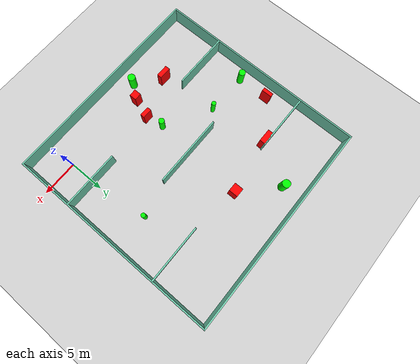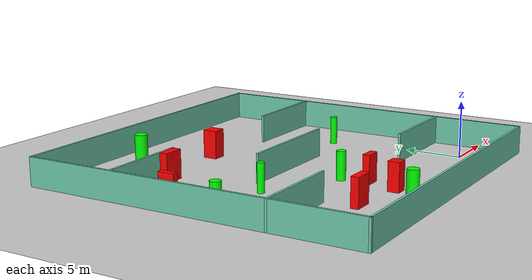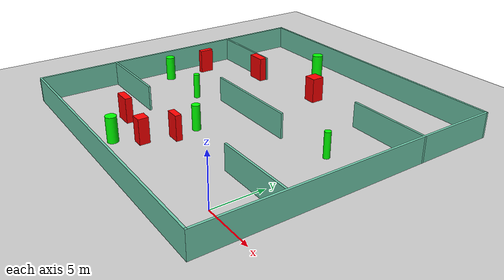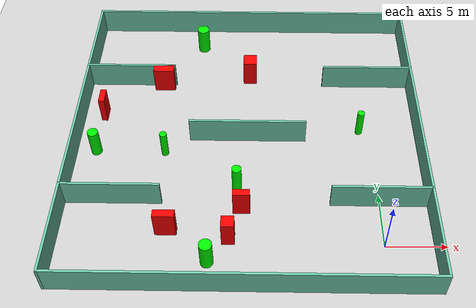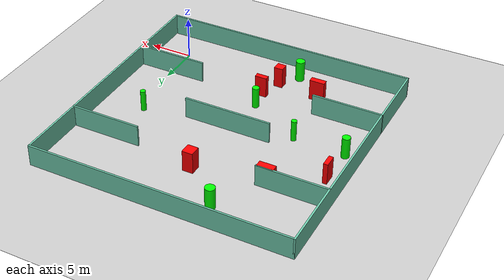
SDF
<sdf version="1.7">
 <world name="default">
  <light name="sun" type="directional">
   <pose>0 0 10 0 -0 0</pose>
   <diffuse>0.8 0.8 0.8 1</diffuse>
   <specular>0.2 0.2 0.2 1</specular>
   <attenuation>
    <range>1000</range>
    <constant>0.9</constant>
    <linear>0.01</linear>
    <quadratic>0.001</quadratic>
   </attenuation>
   <direction>-0.5 0.1 -0.9</direction>
   <spot><inner_angle>0</inner_angle><outer_angle>0</outer_angle><falloff>0</falloff></spot>
  </light>
  <model name="ground_plane">
   <static>1</static>
   <link name="link">
    <collision name="collision">
     <geometry><plane><normal>0 0 1</normal><size>100 100</size></plane></geometry>
     <surface>
      <contact><collide_bitmask>65535</collide_bitmask></contact>
      <friction><ode><mu>100</mu><mu2>50</mu2></ode></friction>
     </surface>
    </collision>
    <visual name="visual">
     <cast_shadows>0</cast_shadows>
     <geometry><plane><normal>0 0 1</normal><size>100 100</size></plane></geometry>
     <material>
      <script><uri>file://media/materials/scripts/gazebo.material</uri><name>Gazebo/Grey</name></script>
     </material>
    </visual>
   </link>
  </model>
  <gravity>0 0 -9.8</gravity>
  <magnetic_field>6e-06 2.3e-05 -4.2e-05</magnetic_field>
  <atmosphere type="adiabatic"/>
  <physics type="ode">
   <max_step_size>0.001</max_step_size>
   <real_time_factor>1</real_time_factor>
   <real_time_update_rate>1000</real_time_update_rate>
  </physics>
  <scene><ambient>0.4 0.4 0.4 1</ambient><background>0.7 0.7 0.7 1</background><shadows>1</shadows></scene>
  <spherical_coordinates>
   <surface_model>EARTH_WGS84</surface_model>
   <latitude_deg>0</latitude_deg>
   <longitude_deg>0</longitude_deg>
   <elevation>0</elevation>
   <heading_deg>0</heading_deg>
  </spherical_coordinates>
  <model name="my_base_walls">
   <link name="Wall_10">
    <collision name="Wall_10_Collision">
     <geometry><box><size>8.2 0.2 2.5</size></box></geometry>
     <pose>0 0 1.25 0 -0 0</pose>
    </collision>
    <visual name="Wall_10_Visual">
     <pose>0 0 1.25 0 -0 0</pose>
     <geometry><box><size>8.2 0.2 2.5</size></box></geometry>
     <material>
      <script><uri>file://media/materials/scripts/gazebo.material</uri><name>Gazebo/Grey</name></script>
      <ambient>0.435294 0.796078 0.67451 1</ambient>
     </material>
     <meta><layer>0</layer></meta>
    </visual>
    <pose>-11 -7 0 0 -0 0</pose>
   </link>
   <link name="Wall_12">
    <collision name="Wall_12_Collision">
     <geometry><box><size>8.2 0.2 2.5</size></box></geometry>
     <pose>0 0 1.25 0 -0 0</pose>
    </collision>
    <visual name="Wall_12_Visual">
     <pose>0 0 1.25 0 -0 0</pose>
     <geometry><box><size>8.2 0.2 2.5</size></box></geometry>
     <material>
      <script><uri>file://media/materials/scripts/gazebo.material</uri><name>Gazebo/Grey</name></script>
      <ambient>0.435294 0.796078 0.67451 1</ambient>
     </material>
     <meta><layer>0</layer></meta>
    </visual>
    <pose>-11 7 0 0 -0 0</pose>
   </link>
   <link name="Wall_14">
    <collision name="Wall_14_Collision">
     <geometry><box><size>8.2 0.2 2.5</size></box></geometry>
     <pose>0 0 1.25 0 -0 0</pose>
    </collision>
    <visual name="Wall_14_Visual">
     <pose>0 0 1.25 0 -0 0</pose>
     <geometry><box><size>8.2 0.2 2.5</size></box></geometry>
     <material>
      <script><uri>file://media/materials/scripts/gazebo.material</uri><name>Gazebo/Grey</name></script>
      <ambient>0.435294 0.796078 0.67451 1</ambient>
     </material>
     <meta><layer>0</layer></meta>
    </visual>
    <pose>11 7 0 0 -0 3.14159</pose>
   </link>
   <link name="Wall_16">
    <collision name="Wall_16_Collision">
     <geometry><box><size>10.2 0.2 2.5</size></box></geometry>
     <pose>0 0 1.25 0 -0 0</pose>
    </collision>
    <visual name="Wall_16_Visual">
     <pose>0 0 1.25 0 -0 0</pose>
     <geometry><box><size>10.2 0.2 2.5</size></box></geometry>
     <material>
      <script><uri>file://media/materials/scripts/gazebo.material</uri><name>Gazebo/Grey</name></script>
      <ambient>0.435294 0.796078 0.67451 1</ambient>
     </material>
     <meta><layer>0</layer></meta>
    </visual>
    <pose>0 0 0 0 -0 3.14159</pose>
   </link>
   <link name="Wall_2">
    <collision name="Wall_2_Collision">
     <geometry><box><size>30.2 0.2 2.5</size></box></geometry>
     <pose>0 0 1.25 0 -0 0</pose>
    </collision>
    <visual name="Wall_2_Visual">
     <pose>0 0 1.25 0 -0 0</pose>
     <geometry><box><size>30.2 0.2 2.5</size></box></geometry>
     <material>
      <script><uri>file://media/materials/scripts/gazebo.material</uri><name>Gazebo/Grey</name></script>
      <ambient>0.435294 0.796078 0.67451 1</ambient>
     </material>
     <meta><layer>0</layer></meta>
    </visual>
    <pose>0 -15 0 0 -0 3.14159</pose>
   </link>
   <link name="Wall_3">
    <collision name="Wall_3_Collision">
     <geometry><box><size>30.2 0.2 2.5</size></box></geometry>
     <pose>0 0 1.25 0 -0 0</pose>
    </collision>
    <visual name="Wall_3_Visual">
     <pose>0 0 1.25 0 -0 0</pose>
     <geometry><box><size>30.2 0.2 2.5</size></box></geometry>
     <material>
      <script><uri>file://media/materials/scripts/gazebo.material</uri><name>Gazebo/Grey</name></script>
      <ambient>0.435294 0.796078 0.67451 1</ambient>
     </material>
     <meta><layer>0</layer></meta>
    </visual>
    <pose>-15 0 0 0 -0 1.5708</pose>
   </link>
   <link name="Wall_4">
    <collision name="Wall_4_Collision">
     <geometry><box><size>30.2 0.2 2.5</size></box></geometry>
     <pose>0 0 1.25 0 -0 0</pose>
    </collision>
    <visual name="Wall_4_Visual">
     <pose>0 0 1.25 0 -0 0</pose>
     <geometry><box><size>30.2 0.2 2.5</size></box></geometry>
     <material>
      <script><uri>file://media/materials/scripts/gazebo.material</uri><name>Gazebo/Grey</name></script>
      <ambient>0.435294 0.796078 0.67451 1</ambient>
     </material>
     <meta><layer>0</layer></meta>
    </visual>
    <pose>0 15 0 0 -0 0</pose>
   </link>
   <link name="Wall_6">
    <collision name="Wall_6_Collision">
     <geometry><box><size>30.2 0.2 2.5</size></box></geometry>
     <pose>0 0 1.25 0 -0 0</pose>
    </collision>
    <visual name="Wall_6_Visual">
     <pose>0 0 1.25 0 -0 0</pose>
     <geometry><box><size>30.2 0.2 2.5</size></box></geometry>
     <material>
      <script><uri>file://media/materials/scripts/gazebo.material</uri><name>Gazebo/Grey</name></script>
      <ambient>0.435294 0.796078 0.67451 1</ambient>
     </material>
     <meta><layer>0</layer></meta>
    </visual>
    <pose>15 0 0 0 -0 1.5708</pose>
   </link>
   <link name="Wall_8">
    <collision name="Wall_8_Collision">
     <geometry><box><size>8.2 0.2 2.5</size></box></geometry>
     <pose>0 0 1.25 0 -0 0</pose>
    </collision>
    <visual name="Wall_8_Visual">
     <pose>0 0 1.25 0 -0 0</pose>
     <geometry><box><size>8.2 0.2 2.5</size></box></geometry>
     <material>
      <script><uri>file://media/materials/scripts/gazebo.material</uri><name>Gazebo/Grey</name></script>
      <ambient>0.435294 0.796078 0.67451 1</ambient>
     </material>
     <meta><layer>0</layer></meta>
    </visual>
    <pose>11 -7 0 0 -0 3.14159</pose>
   </link>
   <static>1</static>
   <pose>-11 11 0 0 -0 0</pose>
  </model>
  <model name="cylinder1">
   <static>1</static>
   <link name="link">
    <inertial>
     <mass>1</mass>
     <inertia><ixx>0.5</ixx><ixy>0</ixy><ixz>0</ixz><iyy>0.5</iyy><iyz>0</iyz><izz>1</izz></inertia>
    </inertial>
    <collision name="collision">
     <geometry><cylinder><radius>0.3072474626328759</radius><length>2.5</length></cylinder></geometry>
    </collision>
    <visual name="visual">
     <geometry><cylinder><radius>0.3072474626328759</radius><length>2.5</length></cylinder></geometry>
     <material>
      <ambient>0 1 0 1</ambient>
      <diffuse>0 1 0 1</diffuse>
      <specular>0.1 0.1 0.1 1</specular>
      <emissive>0 0 0 0</emissive>
     </material>
    </visual>
   </link>
   <pose>-18.168926367333352 9.360910492986466 1.25 0 0 0</pose>
  </model>
  <model name="cylinder2">
   <static>1</static>
   <link name="link">
    <inertial>
     <mass>1</mass>
     <inertia><ixx>0.5</ixx><ixy>0</ixy><ixz>0</ixz><iyy>0.5</iyy><iyz>0</iyz><izz>1</izz></inertia>
    </inertial>
    <collision name="collision">
     <geometry><cylinder><radius>0.5568163586805484</radius><length>2.5</length></cylinder></geometry>
    </collision>
    <visual name="visual">
     <geometry><cylinder><radius>0.5568163586805484</radius><length>2.5</length></cylinder></geometry>
     <material>
      <ambient>0 1 0 1</ambient>
      <diffuse>0 1 0 1</diffuse>
      <specular>0.1 0.1 0.1 1</specular>
      <emissive>0 0 0 0</emissive>
     </material>
    </visual>
   </link>
   <pose>-15.608810545184852 23.223251749631626 1.25 0 0 0</pose>
  </model>
  <model name="cylinder3">
   <static>1</static>
   <link name="link">
    <inertial>
     <mass>1</mass>
     <inertia><ixx>0.5</ixx><ixy>0</ixy><ixz>0</ixz><iyy>0.5</iyy><iyz>0</iyz><izz>1</izz></inertia>
    </inertial>
    <collision name="collision">
     <geometry><cylinder><radius>0.5210635156639979</radius><length>2.5</length></cylinder></geometry>
    </collision>
    <visual name="visual">
     <geometry><cylinder><radius>0.5210635156639979</radius><length>2.5</length></cylinder></geometry>
     <material>
      <ambient>0 1 0 1</ambient>
      <diffuse>0 1 0 1</diffuse>
      <specular>0.1 0.1 0.1 1</specular>
      <emissive>0 0 0 0</emissive>
     </material>
    </visual>
   </link>
   <pose>-13.871328568277786 -1.6219474364352515 1.25 0 0 0</pose>
  </model>
  <model name="cylinder4">
   <static>1</static>
   <link name="link">
    <inertial>
     <mass>1</mass>
     <inertia><ixx>0.5</ixx><ixy>0</ixy><ixz>0</ixz><iyy>0.5</iyy><iyz>0</iyz><izz>1</izz></inertia>
    </inertial>
    <collision name="collision">
     <geometry><cylinder><radius>0.4634184009542881</radius><length>2.5</length></cylinder></geometry>
    </collision>
    <visual name="visual">
     <geometry><cylinder><radius>0.4634184009542881</radius><length>2.5</length></cylinder></geometry>
     <material>
      <ambient>0 1 0 1</ambient>
      <diffuse>0 1 0 1</diffuse>
      <specular>0.1 0.1 0.1 1</specular>
      <emissive>0 0 0 0</emissive>
     </material>
    </visual>
   </link>
   <pose>-24.195448296436037 9.484901905262928 1.25 0 0 0</pose>
  </model>
  <model name="cylinder5">
   <static>1</static>
   <link name="link">
    <inertial>
     <mass>1</mass>
     <inertia><ixx>0.5</ixx><ixy>0</ixy><ixz>0</ixz><iyy>0.5</iyy><iyz>0</iyz><izz>1</izz></inertia>
    </inertial>
    <collision name="collision">
     <geometry><cylinder><radius>0.3036192101354132</radius><length>2.5</length></cylinder></geometry>
    </collision>
    <visual name="visual">
     <geometry><cylinder><radius>0.3036192101354132</radius><length>2.5</length></cylinder></geometry>
     <material>
      <ambient>0 1 0 1</ambient>
      <diffuse>0 1 0 1</diffuse>
      <specular>0.1 0.1 0.1 1</specular>
      <emissive>0 0 0 0</emissive>
     </material>
    </visual>
   </link>
   <pose>-1.0677870407604892 12.067783521014004 1.25 0 0 0</pose>
  </model>
  <model name="cylinder6">
   <static>1</static>
   <link name="link">
    <inertial>
     <mass>1</mass>
     <inertia><ixx>0.5</ixx><ixy>0</ixy><ixz>0</ixz><iyy>0.5</iyy><iyz>0</iyz><izz>1</izz></inertia>
    </inertial>
    <collision name="collision">
     <geometry><cylinder><radius>0.39894204659683064</radius><length>2.5</length></cylinder></geometry>
    </collision>
    <visual name="visual">
     <geometry><cylinder><radius>0.39894204659683064</radius><length>2.5</length></cylinder></geometry>
     <material>
      <ambient>0 1 0 1</ambient>
      <diffuse>0 1 0 1</diffuse>
      <specular>0.1 0.1 0.1 1</specular>
      <emissive>0 0 0 0</emissive>
     </material>
    </visual>
   </link>
   <pose>-11.77583750703823 5.657169670315211 1.25 0 0 0</pose>
  </model>
  <model name="box1">
   <static>1</static>
   <link name="link">
    <inertial>
     <mass>1</mass>
     <inertia><ixx>0.083</ixx><ixy>0</ixy><ixz>0</ixz><iyy>0.083</iyy><iyz>0</iyz><izz>0.083</izz></inertia>
    </inertial>
    <collision name="collision">
     <geometry><box><size>0.5130519172842671 1.442499453668643 2.5</size></box></geometry>
    </collision>
    <visual name="visual">
     <geometry><box><size>0.5130519172842671 1.442499453668643 2.5</size></box></geometry>
     <material>
      <ambient>1 0 0 1</ambient>
      <diffuse>1 0 0 1</diffuse>
      <specular>0.1 0.1 0.1 1</specular>
      <emissive>0 0 0 0</emissive>
     </material>
    </visual>
    <sensor name="my_contact" type="contact">
     <contact><collision>box_collision</collision><topic>__default_topic__</topic></contact>
    </sensor>
   </link>
   <pose>-24.08439886649738 13.911941583605703 1.25 0 0 0</pose>
  </model>
  <model name="box2">
   <static>1</static>
   <link name="link">
    <inertial>
     <mass>1</mass>
     <inertia><ixx>0.083</ixx><ixy>0</ixy><ixz>0</ixz><iyy>0.083</iyy><iyz>0</iyz><izz>0.083</izz></inertia>
    </inertial>
    <collision name="collision">
     <geometry><box><size>1.227571950603744 1.2643990007008687 2.5</size></box></geometry>
    </collision>
    <visual name="visual">
     <geometry><box><size>1.227571950603744 1.2643990007008687 2.5</size></box></geometry>
     <material>
      <ambient>1 0 0 1</ambient>
      <diffuse>1 0 0 1</diffuse>
      <specular>0.1 0.1 0.1 1</specular>
      <emissive>0 0 0 0</emissive>
     </material>
    </visual>
    <sensor name="my_contact" type="contact">
     <contact><collision>box_collision</collision><topic>__default_topic__</topic></contact>
    </sensor>
   </link>
   <pose>-10.914899022332612 18.85913915839915 1.25 0 0 0</pose>
  </model>
  <model name="box3">
   <static>1</static>
   <link name="link">
    <inertial>
     <mass>1</mass>
     <inertia><ixx>0.083</ixx><ixy>0</ixy><ixz>0</ixz><iyy>0.083</iyy><iyz>0</iyz><izz>0.083</izz></inertia>
    </inertial>
    <collision name="collision">
     <geometry><box><size>1.0388130289320143 1.0086734809047995 2.5</size></box></geometry>
    </collision>
    <visual name="visual">
     <geometry><box><size>1.0388130289320143 1.0086734809047995 2.5</size></box></geometry>
     <material>
      <ambient>1 0 0 1</ambient>
      <diffuse>1 0 0 1</diffuse>
      <specular>0.1 0.1 0.1 1</specular>
      <emissive>0 0 0 0</emissive>
     </material>
    </visual>
    <sensor name="my_contact" type="contact">
     <contact><collision>box_collision</collision><topic>__default_topic__</topic></contact>
    </sensor>
   </link>
   <pose>-12.30373010340999 0.49557862911251416 1.25 0 0 0</pose>
  </model>
  <model name="box4">
   <static>1</static>
   <link name="link">
    <inertial>
     <mass>1</mass>
     <inertia><ixx>0.083</ixx><ixy>0</ixy><ixz>0</ixz><iyy>0.083</iyy><iyz>0</iyz><izz>0.083</izz></inertia>
    </inertial>
    <collision name="collision">
     <geometry><box><size>1.8756624181108967 0.7852819521996328 2.5</size></box></geometry>
    </collision>
    <visual name="visual">
     <geometry><box><size>1.8756624181108967 0.7852819521996328 2.5</size></box></geometry>
     <material>
      <ambient>1 0 0 1</ambient>
      <diffuse>1 0 0 1</diffuse>
      <specular>0.1 0.1 0.1 1</specular>
      <emissive>0 0 0 0</emissive>
     </material>
    </visual>
    <sensor name="my_contact" type="contact">
     <contact><collision>box_collision</collision><topic>__default_topic__</topic></contact>
    </sensor>
   </link>
   <pose>-18.944650192114935 17.591290545267263 1.25 0 0 0</pose>
  </model>
  <model name="box5">
   <static>1</static>
   <link name="link">
    <inertial>
     <mass>1</mass>
     <inertia><ixx>0.083</ixx><ixy>0</ixy><ixz>0</ixz><iyy>0.083</iyy><iyz>0</iyz><izz>0.083</izz></inertia>
    </inertial>
    <collision name="collision">
     <geometry><box><size>1.7324118039540497 0.6806316166930956 2.5</size></box></geometry>
    </collision>
    <visual name="visual">
     <geometry><box><size>1.7324118039540497 0.6806316166930956 2.5</size></box></geometry>
     <material>
      <ambient>1 0 0 1</ambient>
      <diffuse>1 0 0 1</diffuse>
      <specular>0.1 0.1 0.1 1</specular>
      <emissive>0 0 0 0</emissive>
     </material>
    </visual>
    <sensor name="my_contact" type="contact">
     <contact><collision>box_collision</collision><topic>__default_topic__</topic></contact>
    </sensor>
   </link>
   <pose>-17.305120029420713 1.1709893405711327 1.25 0 0 0</pose>
  </model>
  <model name="box6">
   <static>1</static>
   <link name="link">
    <inertial>
     <mass>1</mass>
     <inertia><ixx>0.083</ixx><ixy>0</ixy><ixz>0</ixz><iyy>0.083</iyy><iyz>0</iyz><izz>0.083</izz></inertia>
    </inertial>
    <collision name="collision">
     <geometry><box><size>1.3875635561032447 0.598545889745207 2.5</size></box></geometry>
    </collision>
    <visual name="visual">
     <geometry><box><size>1.3875635561032447 0.598545889745207 2.5</size></box></geometry>
     <material>
      <ambient>1 0 0 1</ambient>
      <diffuse>1 0 0 1</diffuse>
      <specular>0.1 0.1 0.1 1</specular>
      <emissive>0 0 0 0</emissive>
     </material>
    </visual>
    <sensor name="my_contact" type="contact">
     <contact><collision>box_collision</collision><topic>__default_topic__</topic></contact>
    </sensor>
   </link>
   <pose>-11.330026578197721 3.2824880107710825 1.25 0 0 0</pose>
  </model>
 </world>
</sdf>
